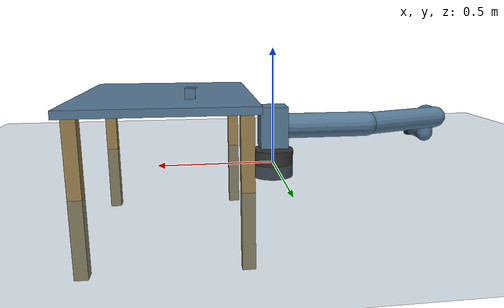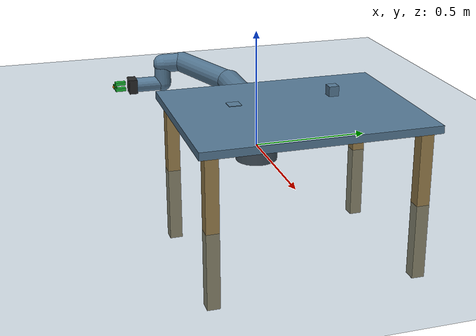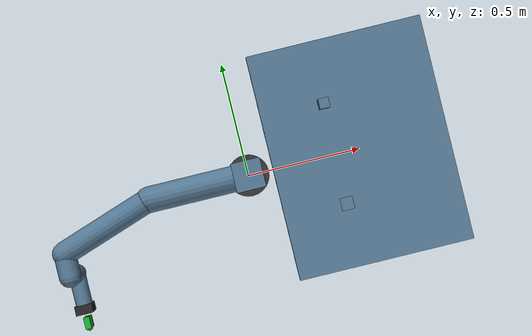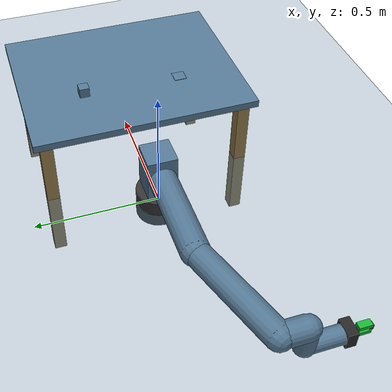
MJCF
<mujoco model="ur5e_lab5_scene">
  <include file="ur5e_gripper.xml"/>

  <statistic center="0.3 0 0.4" extent="1.2"/>

  <visual>
    <headlight diffuse="0.6 0.6 0.6" ambient="0.3 0.3 0.3" specular="0 0 0"/>
    <rgba haze="0.15 0.25 0.35 1"/>
    <global azimuth="150" elevation="-25" offwidth="1920" offheight="1080"/>
  </visual>

  <asset>
    <texture type="skybox" builtin="gradient"
             rgb1="0.3 0.5 0.7" rgb2="0 0 0"
             width="512" height="3072"/>
    <texture type="2d" name="groundplane" builtin="checker" mark="edge"
             rgb1="0.2 0.3 0.4" rgb2="0.1 0.2 0.3" markrgb="0.8 0.8 0.8"
             width="300" height="300"/>
    <material name="groundplane" texture="groundplane" texuniform="true"
              texrepeat="5 5" reflectance="0.2"/>
    <material name="table_mat" rgba="0.75 0.60 0.40 1"/>
    <material name="box_mat" rgba="0.85 0.30 0.10 1"/>
    <material name="target_mat" rgba="0.10 0.80 0.20 0.5"/>
  </asset>

  <worldbody>
    <light pos="0 0 2.5" dir="0 0 -1" directional="true"/>
    <light pos="1.5 -1.5 2.0" dir="-0.5 0.5 -1" directional="false"/>
    <geom name="floor" size="0 0 0.05" type="plane" material="groundplane"/>

    <!-- Table: surface at z = 0.315 -->
    <body name="table" pos="0.45 0 0.300">
      <geom name="table_top" type="box" size="0.35 0.45 0.015"
            material="table_mat" contype="1" conaffinity="1"
            friction="0.8 0.005 0.0001"/>
      <geom name="table_leg_fl" type="box" size="0.025 0.025 0.300"
            pos="-0.30 0.40 -0.300" rgba="0.6 0.5 0.3 1"/>
      <geom name="table_leg_fr" type="box" size="0.025 0.025 0.300"
            pos="-0.30 -0.40 -0.300" rgba="0.6 0.5 0.3 1"/>
      <geom name="table_leg_bl" type="box" size="0.025 0.025 0.300"
            pos="0.30 0.40 -0.300" rgba="0.6 0.5 0.3 1"/>
      <geom name="table_leg_br" type="box" size="0.025 0.025 0.300"
            pos="0.30 -0.40 -0.300" rgba="0.6 0.5 0.3 1"/>
    </body>

    <!-- Graspable box at position A: world (0.35, 0.20, 0.335) -->
    <body name="grasp_box" pos="0.35 0.20 0.335">
      <freejoint name="box_joint"/>
      <geom name="box_geom" type="box"
            size="0.020 0.020 0.020"
            material="box_mat"
            mass="0.15"
            friction="1.5 0.005 0.0001"
            solimp="0.99 0.99 0.001"
            solref="0.002 1"
            condim="4"
            contype="1" conaffinity="1"/>
    </body>

    <!-- Target marker at position B: visual only (no collision) -->
    <body name="target_pad" pos="0.35 -0.20 0.316">
      <geom name="target_geom" type="box"
            size="0.025 0.025 0.001"
            material="target_mat"
            contype="0" conaffinity="0"/>
    </body>
  </worldbody>
</mujoco>

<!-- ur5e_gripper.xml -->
<mujoco model="ur5e_lab5_gripper">

  <compiler angle="radian" autolimits="true"/>
  <option timestep="0.001" gravity="0 0 -9.81" integrator="RK4"/>

  <default>
    <joint damping="1.0" armature="0.01" limited="true"/>
    <geom rgba="0.33 0.47 0.58 1" density="800" contype="1" conaffinity="1"/>
    <motor ctrllimited="true" ctrlrange="-180 180"/>
  </default>

  <worldbody>
    <body name="base" pos="0 0 0">
      <geom type="cylinder" size="0.09 0.06" rgba="0.20 0.20 0.20 1"/>
      <body name="shoulder" pos="0 0 0.1625">
        <joint name="shoulder_pan_joint" axis="0 0 1" range="-6.28318530718 6.28318530718"/>
        <geom type="box" size="0.06 0.06 0.09"/>
        <body name="upper_arm" pos="0 0 0" euler="1.57079632679 0 0">
          <joint name="shoulder_lift_joint" axis="0 0 1" range="-6.28318530718 6.28318530718"/>
          <geom type="capsule" fromto="0 0 0 -0.425 0 0" size="0.055"/>
          <body name="forearm" pos="-0.425 0 0">
            <joint name="elbow_joint" axis="0 0 1" range="-6.28318530718 6.28318530718"/>
            <geom type="capsule" fromto="0 0 0 -0.3922 0 0.1333" size="0.05"/>
            <body name="wrist_1" pos="-0.3922 0 0.1333">
              <joint name="wrist_1_joint" axis="0 0 1" range="-6.28318530718 6.28318530718"/>
              <geom type="capsule" fromto="0 0 0 0 0 0.0997" size="0.045"/>
              <body name="wrist_2" pos="0 0 0.0997" euler="1.57079632679 0 0">
                <joint name="wrist_2_joint" axis="0 0 1" range="-6.28318530718 6.28318530718"/>
                <geom type="capsule" fromto="0 0 0 0 0 0.0996" size="0.04"/>
                <body name="wrist_3" pos="0 0 0.0996" euler="-1.57079632679 0 0">
                  <joint name="wrist_3_joint" axis="0 0 1" range="-6.28318530718 6.28318530718"/>
                  <geom type="capsule" fromto="0 0 0 0 0 0.135" size="0.035"/>

                  <!-- tool0 flange -->
                  <body name="tool0" pos="0 0 0.135">
                    <site name="tool_site" pos="0 0 0" size="0.010" rgba="0 0.5 1 1"/>

                    <!-- Gripper adapter plate -->
                    <body name="gripper_base" pos="0 0 0.020">
                      <geom name="gripper_adapter" type="box"
                            size="0.035 0.035 0.020"
                            rgba="0.15 0.15 0.15 1" mass="0.08"/>

                      <!-- Left finger: slides in +Y direction -->
                      <body name="left_finger" pos="0 0.015 0.060">
                        <joint name="left_finger_joint" type="slide"
                               axis="0 1 0" range="0 0.030"
                               damping="2.0" armature="0.0001"/>
                        <geom name="left_finger_geom" type="box"
                              size="0.013 0.008 0.025"
                              rgba="0.1 0.7 0.2 1" mass="0.02"/>
                        <geom name="left_pad" type="box"
                              size="0.010 0.005 0.008"
                              pos="0 -0.009 0.025"
                              friction="1.5 0.005 0.0001"
                              solimp="0.99 0.99 0.001"
                              solref="0.002 1"
                              condim="4"
                              rgba="0.05 0.5 0.1 1"
                              mass="0.005"/>
                      </body>

                      <!-- Right finger: slides in -Y direction (mirror of left) -->
                      <body name="right_finger" pos="0 -0.015 0.060">
                        <joint name="right_finger_joint" type="slide"
                               axis="0 -1 0" range="0 0.030"
                               damping="2.0" armature="0.0001"/>
                        <geom name="right_finger_geom" type="box"
                              size="0.013 0.008 0.025"
                              rgba="0.1 0.7 0.2 1" mass="0.02"/>
                        <!-- Friction pad at inner fingertip (+y = toward
                             centreline for the right finger; see left_pad) -->
                        <geom name="right_pad" type="box"
                              size="0.010 0.005 0.008"
                              pos="0 0.009 0.025"
                              friction="1.5 0.005 0.0001"
                              solimp="0.99 0.99 0.001"
                              solref="0.002 1"
                              condim="4"
                              rgba="0.05 0.5 0.1 1"
                              mass="0.005"/>
                      </body>

                      <!-- Fingertip center site (IK target = gripper tip) -->
                      <site name="gripper_site" pos="0 0 0.090"
                            size="0.008" rgba="1 0.5 0 1"/>
                    </body>
                  </body>
                </body>
              </body>
            </body>
          </body>
        </body>
      </body>
    </body>
  </worldbody>

  <!-- Mirror right finger to left finger (equal opening) -->
  <equality>
    <joint name="finger_mirror"
           joint1="left_finger_joint"
           joint2="right_finger_joint"
           polycoef="0 1 0 0 0"/>
  </equality>

  <actuator>
    <!-- Arm: torque-controlled -->
    <motor name="motor1" joint="shoulder_pan_joint"/>
    <motor name="motor2" joint="shoulder_lift_joint"/>
    <motor name="motor3" joint="elbow_joint"/>
    <motor name="motor4" joint="wrist_1_joint"/>
    <motor name="motor5" joint="wrist_2_joint"/>
    <motor name="motor6" joint="wrist_3_joint"/>
    <!-- Gripper: position-controlled (index 6) -->
    <position name="gripper" joint="left_finger_joint"
              kp="1000" ctrllimited="true" ctrlrange="0 0.030"/>
  </actuator>
</mujoco>
